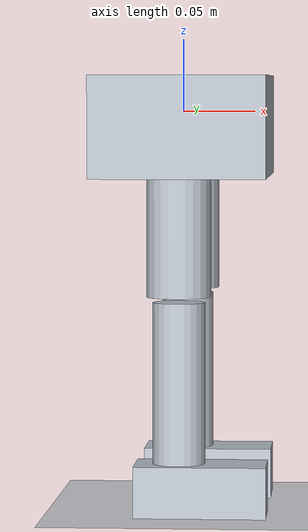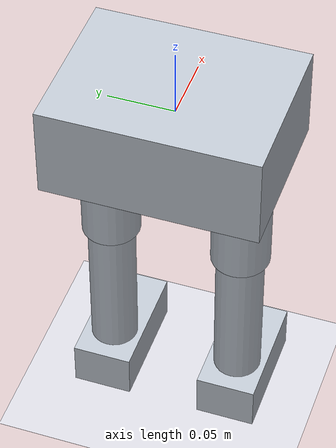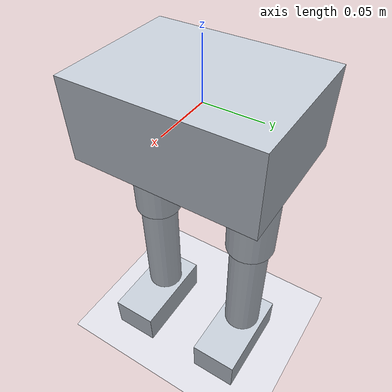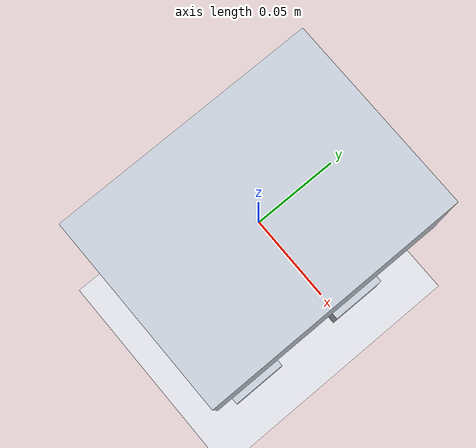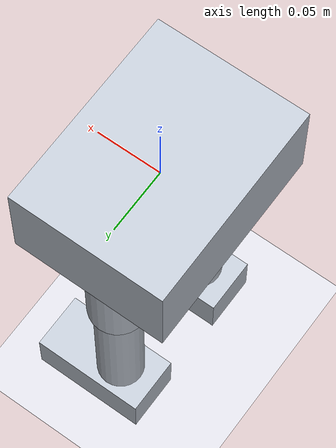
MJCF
<mujoco model="cara_lower_body">
  <compiler angle="radian" autolimits="true"/>
  <option gravity="0 0 0" timestep="0.002"/>   <!-- real g = 9.81; off for inspection -->

  <visual>
    <headlight diffuse="0.6 0.6 0.6" ambient="0.35 0.35 0.35" specular="0 0 0"/>
    <rgba haze="0.15 0.25 0.35 1"/>
    <global azimuth="130" elevation="-20"/>
  </visual>

  <default>
    <geom contype="0" conaffinity="0" group="2"/>   <!-- link geoms: visual only -->
    <site type="sphere" size="0.006" group="3"/>
  </default>

  <worldbody>
    <light pos="0 0 1.5" dir="0 0 -1" diffuse="0.5 0.5 0.5"/>
    <geom name="floor" type="plane" size="0.6 0.6 0.02" pos="0 0 -0.275" rgba="0.85 0.85 0.88 1" group="1"/>

    <body name="pelvis" pos="0 0 0">
      <inertial pos="0 0 -0.01" mass="1.1" diaginertia="0.00279583333 0.00176916667 0.00366666667"/>
      <geom type="box" size="0.06 0.08 0.035" pos="0 0 -0.01" rgba="0.75 0.78 0.82 1"/>
      <site name="pelvis_frame" pos="0 0 0" rgba="0.9 0.5 0.2 1"/>
      <body name="l_thigh" pos="0 0.05 0">
        <joint name="l_hip_yaw" type="hinge" pos="0 0 0" axis="0 0 1" range="-0.79 0.79"/>
        <joint name="l_hip_roll" type="hinge" pos="0 0 0" axis="1 0 0" range="-0.52 0.61"/>
        <joint name="l_hip_pitch" type="hinge" pos="0 0 0" axis="0 1 0" range="-1.75 1.05"/>
        <inertial pos="0 0 -0.066" mass="0.22" diaginertia="0.000264 0.000264 5.324e-05"/>
        <geom type="cylinder" size="0.022 0.06" pos="0 0 -0.066" rgba="0.75 0.78 0.82 1"/>
        <site name="l_thigh_frame" pos="0 0 0" rgba="0.9 0.5 0.2 1"/>
        <body name="l_shin" pos="0 0 -0.12">
          <joint name="l_knee_pitch" type="hinge" pos="0 0 0" axis="0 1 0" range="0 2.36"/>
          <inertial pos="0 0 -0.0696" mass="0.18" diaginertia="0.000216 0.000216 2.916e-05"/>
          <geom type="cylinder" size="0.018 0.06" pos="0 0 -0.0696" rgba="0.75 0.78 0.82 1"/>
          <site name="l_shin_frame" pos="0 0 0" rgba="0.9 0.5 0.2 1"/>
          <body name="l_foot" pos="0 0 -0.12">
            <joint name="l_ankle_pitch" type="hinge" pos="0 0 0" axis="0 1 0" range="-0.87 0.61"/>
            <joint name="l_ankle_roll" type="hinge" pos="0 0 0" axis="1 0 0" range="-0.44 0.44"/>
            <inertial pos="0.015 0 -0.0175" mass="0.08" diaginertia="2.16666667e-05 6.21666667e-05 6.75e-05"/>
            <geom type="box" size="0.045 0.0225 0.0175" pos="0.015 0 -0.0175" rgba="0.75 0.78 0.82 1"/>
            <site name="l_foot_frame" pos="0 0 0" rgba="0.9 0.5 0.2 1"/>
            <site name="l_foot_sole_center" pos="0.015 0 -0.035" rgba="0.2 0.7 0.4 1"/>
          </body>
        </body>
      </body>
      <body name="r_thigh" pos="0 -0.05 0">
        <joint name="r_hip_yaw" type="hinge" pos="0 0 0" axis="0 0 -1" range="-0.79 0.79"/>
        <joint name="r_hip_roll" type="hinge" pos="0 0 0" axis="-1 0 0" range="-0.52 0.61"/>
        <joint name="r_hip_pitch" type="hinge" pos="0 0 0" axis="0 1 0" range="-1.75 1.05"/>
        <inertial pos="0 0 -0.066" mass="0.22" diaginertia="0.000264 0.000264 5.324e-05"/>
        <geom type="cylinder" size="0.022 0.06" pos="0 0 -0.066" rgba="0.75 0.78 0.82 1"/>
        <site name="r_thigh_frame" pos="0 0 0" rgba="0.9 0.5 0.2 1"/>
        <body name="r_shin" pos="0 0 -0.12">
          <joint name="r_knee_pitch" type="hinge" pos="0 0 0" axis="0 1 0" range="0 2.36"/>
          <inertial pos="0 0 -0.0696" mass="0.18" diaginertia="0.000216 0.000216 2.916e-05"/>
          <geom type="cylinder" size="0.018 0.06" pos="0 0 -0.0696" rgba="0.75 0.78 0.82 1"/>
          <site name="r_shin_frame" pos="0 0 0" rgba="0.9 0.5 0.2 1"/>
          <body name="r_foot" pos="0 0 -0.12">
            <joint name="r_ankle_pitch" type="hinge" pos="0 0 0" axis="0 1 0" range="-0.87 0.61"/>
            <joint name="r_ankle_roll" type="hinge" pos="0 0 0" axis="-1 0 0" range="-0.44 0.44"/>
            <inertial pos="0.015 0 -0.0175" mass="0.08" diaginertia="2.16666667e-05 6.21666667e-05 6.75e-05"/>
            <geom type="box" size="0.045 0.0225 0.0175" pos="0.015 0 -0.0175" rgba="0.75 0.78 0.82 1"/>
            <site name="r_foot_frame" pos="0 0 0" rgba="0.9 0.5 0.2 1"/>
            <site name="r_foot_sole_center" pos="0.015 0 -0.035" rgba="0.2 0.7 0.4 1"/>
          </body>
        </body>
      </body>
    </body>
  </worldbody>

  <keyframe>
    <key name="stand_nominal" qpos="0 0 -0.1 0.2 -0.1 0 0 0 -0.1 0.2 -0.1 0"/>
    <key name="semi_squat" qpos="0 0 -0.55 1.1 -0.55 0 0 0 -0.55 1.1 -0.55 0"/>
    <key name="stand_wide" qpos="0 0.15 -0.1 0.2 -0.1 -0.15 0 0.15 -0.1 0.2 -0.1 -0.15"/>
  </keyframe>

</mujoco>
